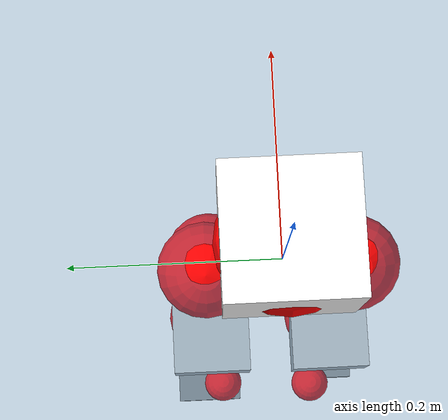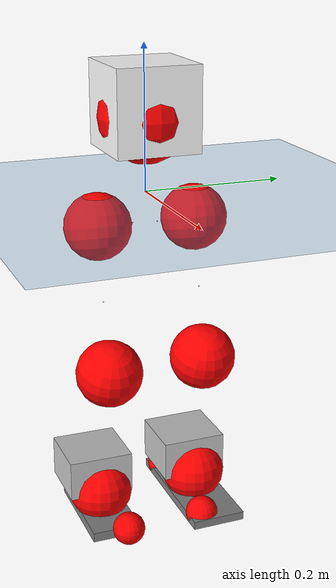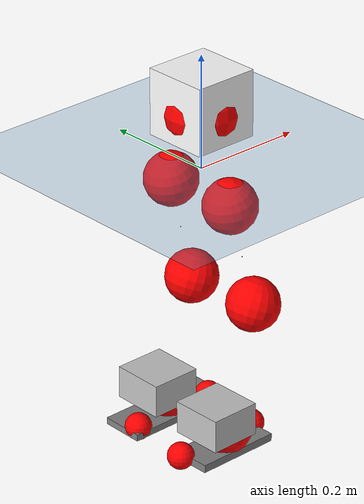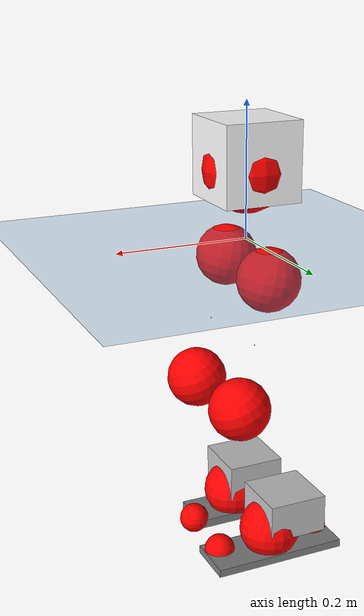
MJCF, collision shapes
<mujoco model="pi_12dof_release_v1">
  <compiler angle="radian" assetdir="assets" balanceinertia="true" inertiafromgeom="false"/>

  <option timestep="0.005" density="1.2" viscosity="2e-05"/>

  <size nkey="1"/>

  <visual>
    <quality shadowsize="8192"/>
    <map shadowclip="0.5"/>
  </visual>

  <default>
    <default class="/">
      <joint armature="0.01" damping="0.01" frictionloss="0.01"/>
      <geom contype="0" conaffinity="0" group="1" solref="-1000 -80"/>
      <site size="0.01 0.005 0.005" group="5"/>
      <general forcelimited="true" biastype="affine" gainprm="20" biasprm="0 -20 -0.5"/>
      <default class="foot">
        <geom size="0.0845 0.036 0.005" type="box" condim="6" group="4" priority="1" friction="0.9 0.2 0.2" solimp="0.015 1 0.005"/>
      </default>
      <default class="reward_collision_sphere">
        <geom group="5" rgba="1 0 0 1"/>
      </default>
    </default>
  </default>

  <asset>
    <texture type="skybox" colorspace="auto" name="//unnamed_texture_0" builtin="gradient" rgb1="0.95 0.95 0.95" rgb2="0.95 0.95 0.95" width="100" height="600"/>
    <texture type="2d" colorspace="auto" name="texplane" builtin="checker" rgb1="0.345 0.575 0.748" rgb2="0.345 0.575 0.748" markrgb="1 1 1" width="512" height="512"/>
    <material name="MatPlane" class="/" texture="texplane" texuniform="true" texrepeat="2 2" specular="0.9"/>
    <mesh name="baselink_1" class="/" file="baselink_1.STL"/>
    <mesh name="r_hip_pitch_link" class="/" file="r_hip_pitch_link.STL"/>
    <mesh name="r_hip_roll_link" class="/" file="r_hip_roll_link.STL"/>
    <mesh name="r_thigh_link" class="/" file="r_thigh_link.STL"/>
    <mesh name="r_calf_link" class="/" file="r_calf_link.STL"/>
    <mesh name="r_ankle_pitch_link" class="/" file="r_ankle_pitch_link.STL"/>
    <mesh name="r_ankle_roll_link" class="/" file="r_ankle_roll_link.STL"/>
    <mesh name="l_hip_pitch_link" class="/" file="l_hip_pitch_link.STL"/>
    <mesh name="l_hip_roll_link" class="/" file="l_hip_roll_link.STL"/>
    <mesh name="l_thigh_link" class="/" file="l_thigh_link.STL"/>
    <mesh name="l_calf_link" class="/" file="l_calf_link.STL"/>
    <mesh name="l_ankle_pitch_link" class="/" file="l_ankle_pitch_link.STL"/>
    <mesh name="l_ankle_roll_link" class="/" file="l_ankle_roll_link.STL"/>
  </asset>

  <worldbody>
    <geom name="floor" class="/" size="100 100 0.125" type="plane" group="0" material="MatPlane"/>
    <light name="toplight_shadow" class="/" pos="0 0 5" dir="0.0990148 0.0990148 -0.990148" type="directional" ambient="0.04 0.04 0.04" diffuse="0.55 0.55 0.55" specular="0.12 0.12 0.12"/>
    <light name="toplight_fill" class="/" pos="0 0 5" dir="0.0990148 0.0990148 -0.990148" type="directional" castshadow="false" ambient="0.04 0.04 0.04" diffuse="0.3 0.3 0.3" specular="0.08 0.08 0.08"/>
    <body name="trunk" pos="-8.7153e-05 0.000206402 0.00273431" quat="1 4.94291e-05 0.000529602 0.000280471">
      <inertial pos="0.00484858 -0.00623765 0.0541352" quat="0.695319 0.00865649 0.00980779 0.718582" mass="3.53577" diaginertia="0.0217851 0.00482538 0.0250459"/>
      <joint name="//unnamed_joint_0" type="free"/>
      <geom name="//unnamed_geom_1" class="/" type="mesh" density="0" rgba="1 1 1 1" mesh="baselink_1"/>
      <geom name="//unnamed_geom_2" class="/" size="0.0583616 0.0583616 0.0583616" pos="0 0 0.114881" type="box" rgba="1 1 1 1"/>
      <geom name="//unnamed_geom_3" class="reward_collision_sphere" size="0.0641978" pos="0 0 0.10052"/>
      <site name="imu" class="/" pos="0.00510671 0.00475448 0.00379677" size="0.0116723"/>
      <camera name="track" class="/" pos="0 -1.75511 0" quat="0.707107 0.707107 0 0" mode="trackcom"/>
      <camera name="ego_camera" class="/" pos="0.0891103 0 0.258481" quat="-0.5 -0.5 0.5 0.5"/>
      <body name="r_hip_pitch_link" pos="-0.00177747 -0.0184351 -0.045074" quat="0.992294 0.000453731 -0.123905 6.52716e-05">
        <inertial pos="0.00578531 -0.0517524 0.000215884" quat="-0.0131614 0.701426 -0.0357055 0.711726" mass="0.565067" diaginertia="0.000253341 5.05627e-05 0.000490521"/>
        <joint name="r_hip_pitch_joint" class="/" pos="0 0 0" axis="-0.0216638 -0.999469 -0.024341" range="-1.79252 1.29604" armature="0.0122955" damping="0.016576" frictionloss="0.0135717"/>
        <geom name="//unnamed_geom_4" class="/" type="mesh" density="0" rgba="0.75294 0.75294 0.75294 1" mesh="r_hip_pitch_link"/>
        <geom name="//unnamed_geom_5" class="/" size="0.000583616 0.000583616 0.000583616" type="box" rgba="0.75294 0.75294 0.75294 1"/>
        <body name="r_hip_roll_link" pos="0.000828814 -0.050709 -0.000154306" quat="1 0.000208502 -6.13061e-05 -3.70527e-05">
          <inertial pos="-0.00128316 -0.00182218 -0.0863223" quat="0.703998 -0.0726546 -0.0816866 0.701737" mass="0.672837" diaginertia="0.000779051 0.000147165 0.000908326"/>
          <joint name="r_hip_roll_joint" class="/" pos="0 0 0" axis="-0.999848 -0.00470838 -0.0167857" stiffness="0.00245503" range="-0.112614 0.455355" armature="0.010326" damping="0.0539397" frictionloss="0.0110028"/>
          <geom name="//unnamed_geom_6" class="/" type="mesh" density="0" rgba="0.75294 0.75294 0.75294 1" mesh="r_hip_roll_link"/>
          <geom name="//unnamed_geom_7" class="/" size="0.000583616 0.000583616 0.000583616" type="box" rgba="0.75294 0.75294 0.75294 1"/>
          <geom name="//unnamed_geom_8" class="reward_collision_sphere" size="0.0466893"/>
          <body name="r_thigh_link" pos="-0.000386627 -0.00243153 -0.10304" quat="0.999996 -0.00284744 3.31939e-05 0.000283628">
            <inertial pos="-0.000464705 0.000722749 -0.0689361" quat="0.737656 0.675177 -0.000216579 0.000131754" mass="0.184301" diaginertia="0.000294451 5.11099e-05 0.00037631"/>
            <joint name="r_thigh_joint" class="/" pos="0 0 0" axis="0.00288359 -0.000715791 -0.999996" range="-0.314195 0.64959" armature="0.009222" damping="0.00595262" frictionloss="0.0119714"/>
            <geom name="//unnamed_geom_9" class="/" type="mesh" density="0" rgba="0.75294 0.75294 0.75294 1" mesh="r_thigh_link"/>
            <geom name="//unnamed_geom_10" class="/" size="0.000583616 0.000583616 0.000583616" type="box" rgba="0.75294 0.75294 0.75294 1"/>
            <body name="r_calf_link" pos="0.000438294 -0.00114701 -0.0992564" quat="0.947489 -0.000832649 0.319784 0.00179457">
              <inertial pos="-0.00179507 0.00150947 -0.1025" quat="0.999979 -0.00333744 -0.000394608 0.00548404" mass="1.40372" diaginertia="0.00867802 0.00195193 0.00105951"/>
              <joint name="r_calf_joint" class="/" pos="0 0 0" axis="-0.030521 -0.999333 0.0200264" range="-1.65418 0.633527" armature="0.0115311" damping="0.0159002" frictionloss="0.0107735"/>
              <geom name="//unnamed_geom_11" class="/" type="mesh" density="0" rgba="0.75294 0.75294 0.75294 1" mesh="r_calf_link"/>
              <geom name="//unnamed_geom_12" class="/" size="0.000583616 0.000583616 0.000583616" type="box" rgba="0.75294 0.75294 0.75294 1"/>
              <geom name="//unnamed_geom_13" class="reward_collision_sphere" size="0.0466893"/>
              <body name="r_ankle_pitch_link" pos="-0.00722058 -0.00109939 -0.200818" quat="0.980014 0.000378713 -0.198926 -0.00047336">
                <inertial pos="0.00584212 0.00086469 -0.000314392" quat="0.00318902 0.707542 -0.0035474 0.706655" mass="0.255204" diaginertia="0.000708873 0.000104471 0.000681556"/>
                <joint name="r_ankle_pitch_joint" class="/" pos="0 0 0" axis="0.000555422 -0.999999 -0.000997683" stiffness="0.00167401" range="-1.2582 0.503406" armature="0.0110688" damping="0" frictionloss="0.00903746"/>
                <geom name="//unnamed_geom_14" class="/" type="mesh" density="0" rgba="0.75294 0.75294 0.75294 1" mesh="r_ankle_pitch_link"/>
                <geom name="//unnamed_geom_15" class="/" size="0.0455221 0.0466893 0.0291808" type="box" rgba="0.75294 0.75294 0.75294 1"/>
                <body name="r_ankle_roll_link" pos="0.08316 0.00467439 -0.00121311" quat="0.999999 -0.000430749 -0.000217178 -0.000904759">
                  <inertial pos="-0.028795 -0.00181421 -0.0276784" quat="0.557041 0.428703 0.440759 0.558257" mass="0.90197" diaginertia="0.00261919 0.000526903 0.00169918"/>
                  <joint name="r_ankle_roll_joint" class="/" pos="0 0 0" axis="-0.999983 -0.000293683 0.00581224" stiffness="0.00328271" range="-0.105392 0.107405" armature="0.0117999" damping="0.00731087" frictionloss="0.00740518"/>
                  <geom name="//unnamed_geom_16" class="/" type="mesh" density="0" rgba="0.75294 0.75294 0.75294 1" mesh="r_ankle_roll_link"/>
                  <geom name="//unnamed_geom_17" class="/" type="mesh" rgba="0.75294 0.75294 0.75294 1" mesh="r_ankle_roll_link"/>
                  <geom name="right_foot" class="foot" size="0.0763294 0.0350418 0.0069501" pos="-0.060595 0 -0.0631843"/>
                  <geom name="//unnamed_geom_19" class="reward_collision_sphere" size="0.0466893" pos="-0.0594068 0 -0.0287201"/>
                  <geom name="//unnamed_geom_20" class="reward_collision_sphere" size="0.0233447" pos="0.0178221 0.0175511 -0.0574403"/>
                  <geom name="//unnamed_geom_21" class="reward_collision_sphere" size="0.0233447" pos="-0.142576 0.0175511 -0.0574403"/>
                  <site name="right_foot" class="foot" pos="-0.060595 0 -0.0631843" size="0.0116723"/>
                </body>
              </body>
            </body>
          </body>
        </body>
      </body>
      <body name="l_hip_pitch_link" pos="-0.0012834 0.017116 -0.0466818" quat="0.992159 0.00105565 -0.124978 -0.000301862">
        <inertial pos="0.00137183 0.0521936 0.00201945" quat="-0.00126927 0.694007 0.0284592 0.719404" mass="0.681735" diaginertia="0.000308339 5.3349e-05 0.000615053"/>
        <joint name="l_hip_pitch_joint" class="/" pos="0 0 0" axis="-0.000732552 0.999918 -0.0127939" range="-1.32261 1.8638" armature="0.0107112" damping="0.00472947" frictionloss="0.0141931"/>
        <geom name="//unnamed_geom_22" class="/" type="mesh" density="0" rgba="0.75294 0.75294 0.75294 1" mesh="l_hip_pitch_link"/>
        <geom name="//unnamed_geom_23" class="/" size="0.000583616 0.000583616 0.000583616" type="box" rgba="0.75294 0.75294 0.75294 1"/>
        <body name="l_hip_roll_link" pos="0.000146106 0.0544796 0.000966651" quat="1 -0.000119617 -0.000109004 -0.000162435">
          <inertial pos="-0.00359198 0.00264192 -0.0864369" quat="0.700049 -0.0780012 -0.0784348 0.705475" mass="0.600457" diaginertia="0.000710387 0.000135452 0.000723311"/>
          <joint name="l_hip_roll_joint" class="/" pos="0 0 0" axis="-1 -9.86518e-05 -0.000140132" range="-0.652117 0.236803" armature="0.0125074" damping="0.00185854" frictionloss="0.0129271"/>
          <geom name="//unnamed_geom_24" class="/" type="mesh" density="0" rgba="0.75294 0.75294 0.75294 1" mesh="l_hip_roll_link"/>
          <geom name="//unnamed_geom_25" class="/" size="0.000583616 0.000583616 0.000583616" type="box" rgba="0.75294 0.75294 0.75294 1"/>
          <geom name="//unnamed_geom_26" class="reward_collision_sphere" size="0.0466893"/>
          <body name="l_thigh_link" pos="-0.00322179 -0.000235526 -0.0985422" quat="0.999998 0.000133669 0.00154116 -0.00138628">
            <inertial pos="-0.00360166 -0.00241859 -0.0657058" quat="0.675604 0.737264 0.000205488 0.000835811" mass="0.171074" diaginertia="0.000261136 4.1126e-05 0.000285003"/>
            <joint name="l_thigh_joint" class="/" pos="0 0 0" axis="0.0018415 -0.00824158 -0.999964" stiffness="0.000741748" range="-0.568204 0.388134" armature="0.0116316" damping="0" frictionloss="0.013286"/>
            <geom name="//unnamed_geom_27" class="/" type="mesh" density="0" rgba="0.75294 0.75294 0.75294 1" mesh="l_thigh_link"/>
            <geom name="//unnamed_geom_28" class="/" size="0.000583616 0.000583616 0.000583616" type="box" rgba="0.75294 0.75294 0.75294 1"/>
            <body name="l_calf_link" pos="-0.00306377 -0.00328623 -0.100695" quat="0.948058 0.00153944 0.318092 0.00125919">
              <inertial pos="0.00244861 0.00276547 -0.100078" quat="0.999299 0.021085 0.028408 -0.012208" mass="1.30003" diaginertia="0.0083697 0.00187798 0.00110124"/>
              <joint name="l_calf_joint" class="/" pos="0 0 0" axis="-0.0114228 0.999921 0.00530259" range="-0.611576 1.65802" armature="0.0112603" damping="0.0170485" frictionloss="0.0127802"/>
              <geom name="//unnamed_geom_29" class="/" type="mesh" density="0" rgba="0.75294 0.75294 0.75294 1" mesh="l_calf_link"/>
              <geom name="//unnamed_geom_30" class="/" size="0.000583616 0.000583616 0.000583616" type="box" rgba="0.75294 0.75294 0.75294 1"/>
              <geom name="//unnamed_geom_31" class="reward_collision_sphere" size="0.0466893"/>
              <body name="l_ankle_pitch_link" pos="-0.00133268 0.00110294 -0.194136" quat="0.980258 0.000676496 -0.19772 -0.000305367">
                <inertial pos="0.00616822 -0.00857032 -0.00105985" quat="-0.0130827 0.714509 -0.00813105 0.699456" mass="0.309612" diaginertia="0.000781979 0.00012526 0.000781472"/>
                <joint name="l_ankle_pitch_joint" class="/" pos="0 0 0" axis="0.0286337 0.999548 0.0091407" range="-0.516448 1.3095" armature="0.0121033" damping="0.0301418" frictionloss="0.0105419"/>
                <geom name="//unnamed_geom_32" class="/" type="mesh" density="0" rgba="0.75294 0.75294 0.75294 1" mesh="l_ankle_pitch_link"/>
                <geom name="//unnamed_geom_33" class="/" size="0.0455221 0.0466893 0.0291808" type="box" rgba="0.75294 0.75294 0.75294 1"/>
                <body name="l_ankle_roll_link" pos="0.0869706 0.00430397 0.000236051" quat="0.999999 0.00152743 0.000127024 0.00013899">
                  <inertial pos="-0.0285175 -0.0018743 -0.0201557" quat="0.56385 0.437536 0.40467 0.571732" mass="0.886897" diaginertia="0.00276871 0.000530736 0.00156922"/>
                  <joint name="l_ankle_roll_joint" class="/" pos="0 0 0" axis="-0.999245 -0.0383219 0.0064597" range="-0.13775 0.31464" armature="0.0112847" damping="0.0215954" frictionloss="0.0161159"/>
                  <geom name="//unnamed_geom_34" class="/" type="mesh" density="0" rgba="0.75294 0.75294 0.75294 1" mesh="l_ankle_roll_link"/>
                  <geom name="//unnamed_geom_35" class="/" type="mesh" rgba="0.75294 0.75294 0.75294 1" mesh="l_ankle_roll_link"/>
                  <geom name="left_foot" class="foot" size="0.1031 0.0387383 0.00599564" pos="-0.060595 0 -0.0631843"/>
                  <geom name="//unnamed_geom_37" class="reward_collision_sphere" size="0.0466893" pos="-0.0594068 0 -0.0287201"/>
                  <geom name="//unnamed_geom_38" class="reward_collision_sphere" size="0.0233447" pos="0.0178221 -0.0175511 -0.0574403"/>
                  <geom name="//unnamed_geom_39" class="reward_collision_sphere" size="0.0233447" pos="-0.142576 -0.0175511 -0.0574403"/>
                  <site name="left_foot" class="foot" pos="-0.060595 0 -0.0631843" size="0.0116723"/>
                </body>
              </body>
            </body>
          </body>
        </body>
      </body>
    </body>
  </worldbody>

  <contact>
    <pair class="/" geom1="floor" geom2="right_foot" name="//unnamed_contact_1"/>
    <pair class="/" geom1="floor" geom2="left_foot" name="//unnamed_contact_0"/>
  </contact>

  <actuator>
    <general name="r_hip_pitch_joint" class="/" joint="r_hip_pitch_joint" forcerange="-27.0953 27.0953" gainprm="23.1174" biasprm="0 -23.1174 -0.616424"/>
    <general name="r_hip_roll_joint" class="/" joint="r_hip_roll_joint" forcerange="-23.949 23.949" gainprm="23.1174" biasprm="0 -23.1174 -0.616424"/>
    <general name="r_thigh_joint" class="/" joint="r_thigh_joint" forcerange="-26.0478 26.0478" gainprm="23.1174" biasprm="0 -23.1174 -0.616424"/>
    <general name="r_calf_joint" class="/" joint="r_calf_joint" forcerange="-25.4999 25.4999" gainprm="23.1174" biasprm="0 -23.1174 -0.616424"/>
    <general name="r_ankle_pitch_joint" class="/" joint="r_ankle_pitch_joint" forcerange="-22.7401 22.7401" gainprm="23.1174" biasprm="0 -23.1174 -0.616424"/>
    <general name="r_ankle_roll_joint" class="/" joint="r_ankle_roll_joint" forcerange="-19.4492 19.4492" gainprm="23.1174" biasprm="0 -23.1174 -0.616424"/>
    <general name="l_hip_pitch_joint" class="/" joint="l_hip_pitch_joint" forcerange="-25.4634 25.4634" gainprm="23.1174" biasprm="0 -23.1174 -0.616424"/>
    <general name="l_hip_roll_joint" class="/" joint="l_hip_roll_joint" forcerange="-31.4077 31.4077" gainprm="23.1174" biasprm="0 -23.1174 -0.616424"/>
    <general name="l_thigh_joint" class="/" joint="l_thigh_joint" forcerange="-26.1342 26.1342" gainprm="23.1174" biasprm="0 -23.1174 -0.616424"/>
    <general name="l_calf_joint" class="/" joint="l_calf_joint" forcerange="-23.2116 23.2116" gainprm="23.1174" biasprm="0 -23.1174 -0.616424"/>
    <general name="l_ankle_pitch_joint" class="/" joint="l_ankle_pitch_joint" forcerange="-25.4206 25.4206" gainprm="23.1174" biasprm="0 -23.1174 -0.616424"/>
    <general name="l_ankle_roll_joint" class="/" joint="l_ankle_roll_joint" forcerange="-24.6309 24.6309" gainprm="23.1174" biasprm="0 -23.1174 -0.616424"/>
  </actuator>

  <sensor>
    <gyro site="imu" name="imu_angular_velocity"/>
    <velocimeter site="imu" name="imu_linear_velocity"/>
    <framelinvel objtype="site" objname="left_foot" name="left_foot_global_linear_velocity"/>
    <framelinvel objtype="site" objname="right_foot" name="right_foot_global_linear_velocity"/>
  </sensor>

  <keyframe>
    <key name="home" qpos="0 0 0.291 1 0 0 0 0.4 0 0 -0.8 0.4 0 -0.4 0 0 0.8 -0.4 0"/>
  </keyframe>
</mujoco>
